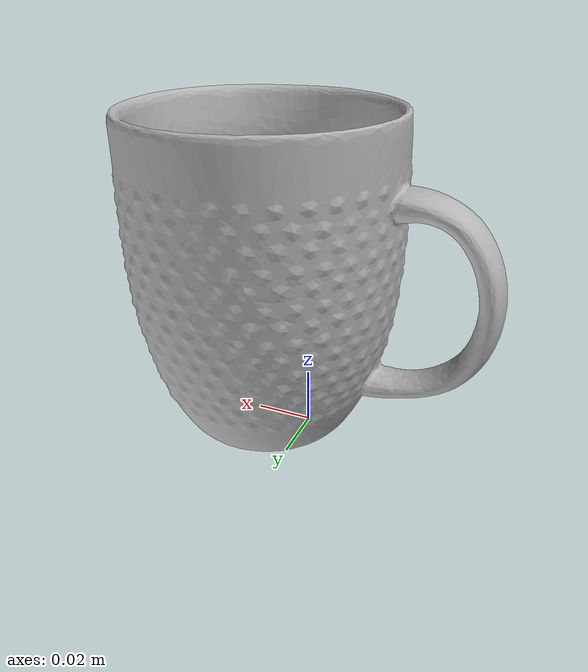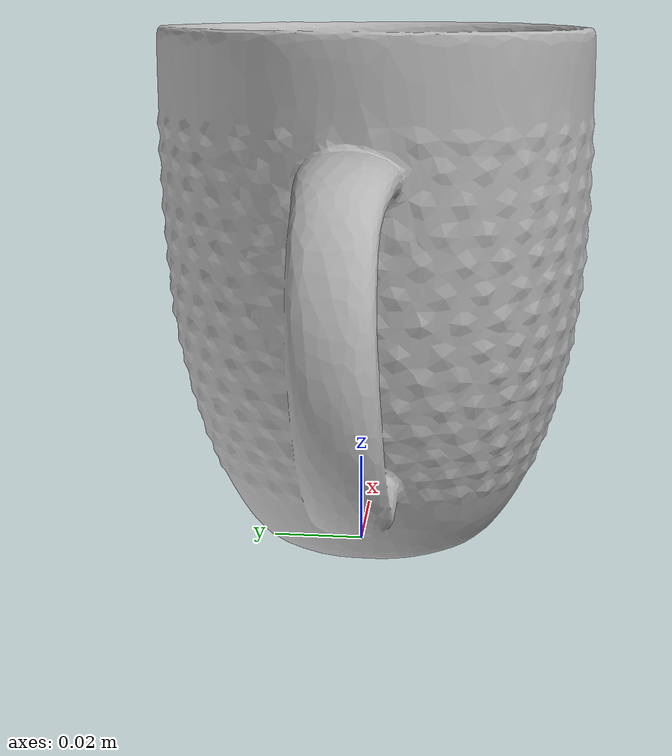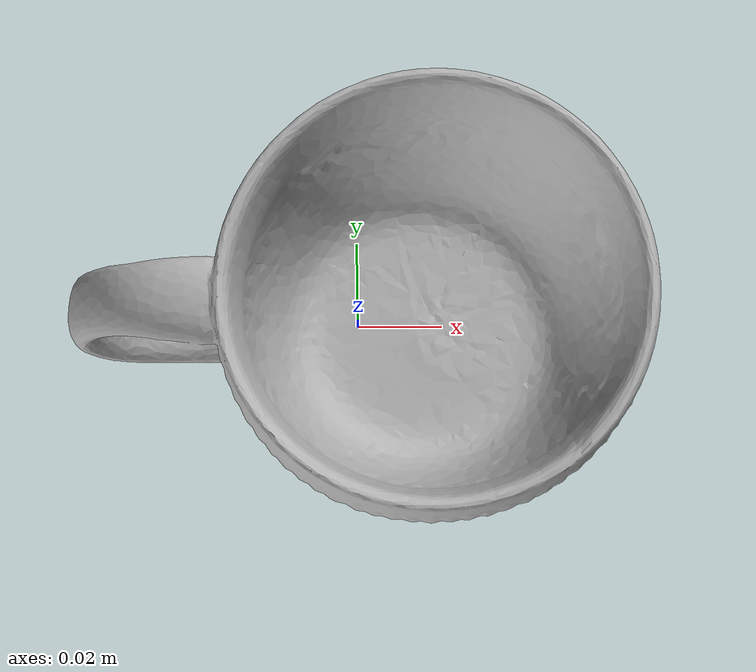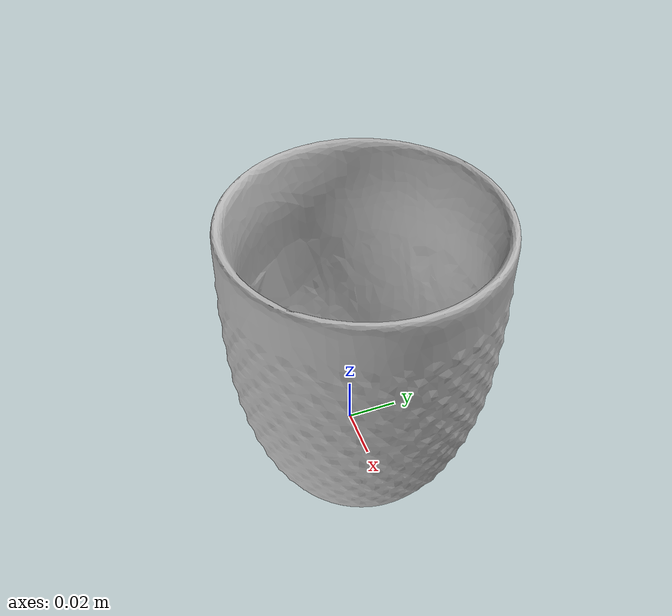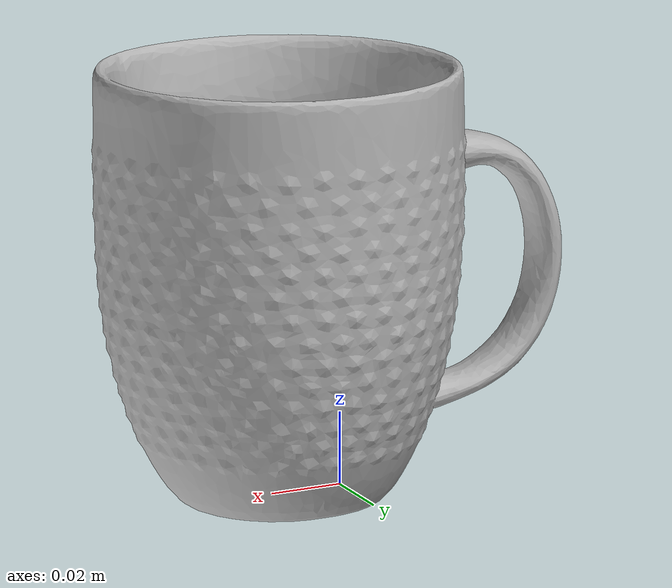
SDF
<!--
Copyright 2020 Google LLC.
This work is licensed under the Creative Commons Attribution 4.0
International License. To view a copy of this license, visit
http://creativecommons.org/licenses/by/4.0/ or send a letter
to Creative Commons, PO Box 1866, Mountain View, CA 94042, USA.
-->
<?xml version="1.0" ?>
<sdf version="1.6">
  <model name="Threshold_Porcelain_Coffee_Mug_All_Over_Bead_White">
    <link name="link_0">
      <visual name="visual">
        <geometry>
          <mesh>
            <uri>meshes/model.obj</uri>
          </mesh>
        </geometry>
      </visual>
      <collision name="collision_0">
        <geometry>
          <mesh>
            <uri>meshes/model.obj</uri>
          </mesh>
        </geometry>
      </collision>
    </link>
  </model>
</sdf>
